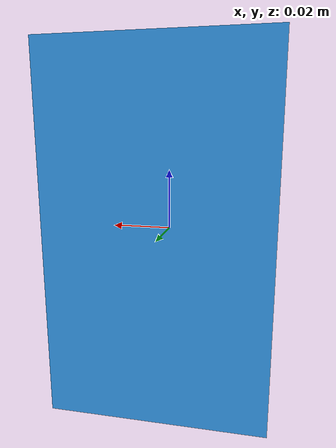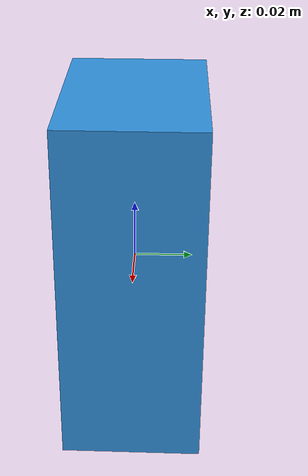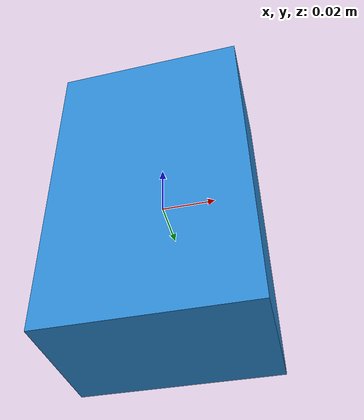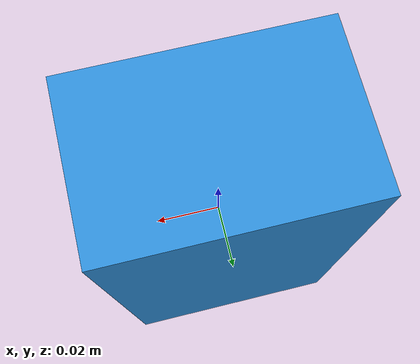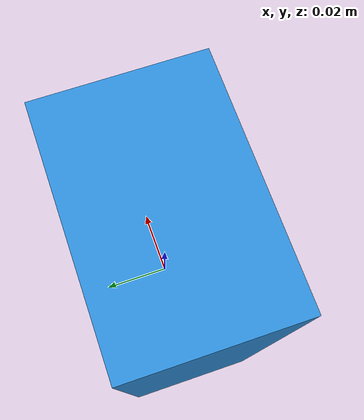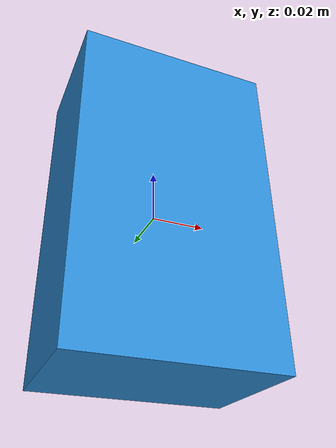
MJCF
<?xml version="1.0" encoding="UTF-8"?>
<!-- One shared clean-room mesh surrogate for pose/instance perception tests. -->
<mujoco model="libero_vlabench_perception_token_primitive">
  <worldbody>
    <body>
      <body name="object">
        <geom name="token_visual" type="box" group="1" contype="0" conaffinity="0"
              size="0.036 0.024 0.060" rgba="0.18 0.55 0.84 1"/>
        <geom name="token_collision" type="box" group="0" size="0.034 0.022 0.058"
              mass="0.08"/>
      </body>
      <site name="bottom_site" pos="0 0 -0.060" size="0.005" rgba="0 0 0 0"/>
      <site name="top_site" pos="0 0 0.060" size="0.005" rgba="0 0 0 0"/>
      <site name="horizontal_radius_site" pos="0.036 0 0" size="0.005" rgba="0 0 0 0"/>
    </body>
  </worldbody>
</mujoco>
